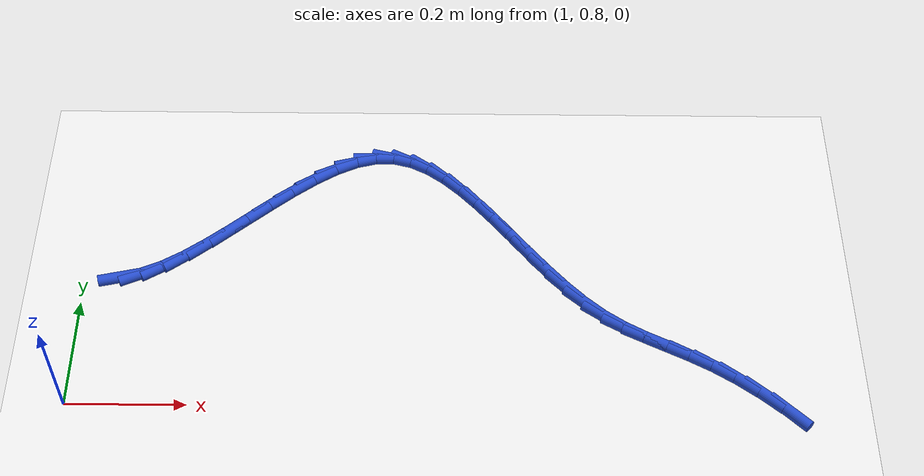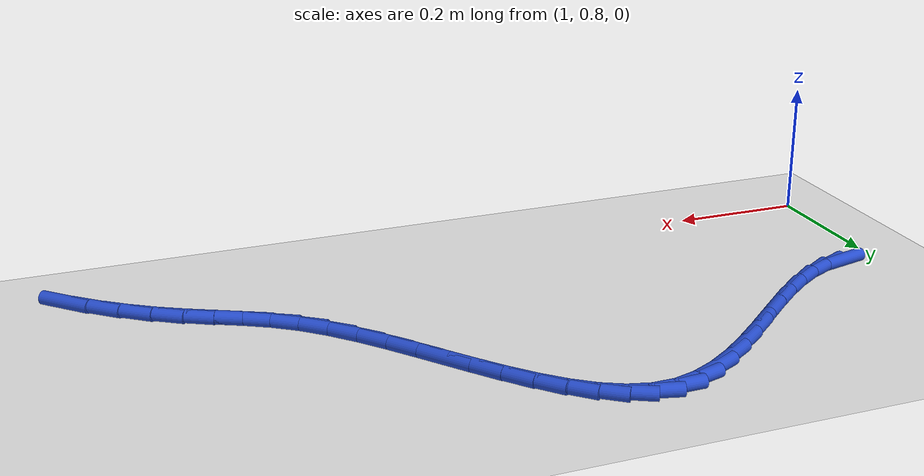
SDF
<sdf version="1.6">
 <world name="default">
  <model name="ground_plane">
   <static>1</static>
   <link name="link">
    <collision name="collision">
     <geometry><plane><normal>0 0 1</normal><size>100 100</size></plane></geometry>
     <surface><friction><ode><mu>100</mu><mu2>50</mu2></ode></friction></surface>
    </collision>
    <visual name="visual">
     <cast_shadows>0</cast_shadows>
     <geometry><plane><normal>0 0 1</normal><size>100 100</size></plane></geometry>
     <material>
      <script><uri>file://media/materials/scripts/gazebo.material</uri><name>Gazebo/WhiteGlow</name></script>
     </material>
    </visual>
   </link>
  </model>
  <model name="line">
   <link name="link_51">
    <pose>1.0645495627103858 1.0475559115130457 0.01 0 1.57 0.22516677115780626</pose>
    <collision name="collision">
     <geometry><cylinder><radius>0.01</radius><length>0.08</length></cylinder></geometry>
    </collision>
    <visual name="visual">
     <material>
      <script><name>Gazebo/Blue</name><uri>file://media/materials/scripts/gazebo.material</uri></script>
     </material>
     <geometry><cylinder><radius>0.01</radius><length>0.08</length></cylinder></geometry>
    </visual>
   </link>
   <link name="link_52">
    <pose>1.0971877701576767 1.0550317217874212 0.01 0 1.57 0.4237539195885437</pose>
    <collision name="collision">
     <geometry><cylinder><radius>0.01</radius><length>0.08</length></cylinder></geometry>
    </collision>
    <visual name="visual">
     <material>
      <script><name>Gazebo/Blue</name><uri>file://media/materials/scripts/gazebo.material</uri></script>
     </material>
     <geometry><cylinder><radius>0.01</radius><length>0.08</length></cylinder></geometry>
    </visual>
   </link>
   <link name="link_53">
    <pose>1.1310813266219522 1.0703205181027404 0.01 0 1.57 0.5532730920960734</pose>
    <collision name="collision">
     <geometry><cylinder><radius>0.01</radius><length>0.08</length></cylinder></geometry>
    </collision>
    <visual name="visual">
     <material>
      <script><name>Gazebo/Blue</name><uri>file://media/materials/scripts/gazebo.material</uri></script>
     </material>
     <geometry><cylinder><radius>0.01</radius><length>0.08</length></cylinder></geometry>
    </visual>
   </link>
   <link name="link_54">
    <pose>1.1660049868540003 1.0918899897105898 0.01 0 1.57 0.6348736017017773</pose>
    <collision name="collision">
     <geometry><cylinder><radius>0.01</radius><length>0.08</length></cylinder></geometry>
    </collision>
    <visual name="visual">
     <material>
      <script><name>Gazebo/Blue</name><uri>file://media/materials/scripts/gazebo.material</uri></script>
     </material>
     <geometry><cylinder><radius>0.01</radius><length>0.08</length></cylinder></geometry>
    </visual>
   </link>
   <link name="link_55">
    <pose>1.2017335056046081 1.1182078258625547 0.01 0 1.57 0.6828726116170073</pose>
    <collision name="collision">
     <geometry><cylinder><radius>0.01</radius><length>0.08</length></cylinder></geometry>
    </collision>
    <visual name="visual">
     <material>
      <script><name>Gazebo/Blue</name><uri>file://media/materials/scripts/gazebo.material</uri></script>
     </material>
     <geometry><cylinder><radius>0.01</radius><length>0.08</length></cylinder></geometry>
    </visual>
   </link>
   <link name="link_56">
    <pose>1.2380416376245642 1.147741715810221 0.01 0 1.57 0.7053565660442894</pose>
    <collision name="collision">
     <geometry><cylinder><radius>0.01</radius><length>0.08</length></cylinder></geometry>
    </collision>
    <visual name="visual">
     <material>
      <script><name>Gazebo/Blue</name><uri>file://media/materials/scripts/gazebo.material</uri></script>
     </material>
     <geometry><cylinder><radius>0.01</radius><length>0.08</length></cylinder></geometry>
    </visual>
   </link>
   <link name="link_57">
    <pose>1.274704137664656 1.1789593488051757 0.01 0 1.57 0.706009868089719</pose>
    <collision name="collision">
     <geometry><cylinder><radius>0.01</radius><length>0.08</length></cylinder></geometry>
    </collision>
    <visual name="visual">
     <material>
      <script><name>Gazebo/Blue</name><uri>file://media/materials/scripts/gazebo.material</uri></script>
     </material>
     <geometry><cylinder><radius>0.01</radius><length>0.08</length></cylinder></geometry>
    </visual>
   </link>
   <link name="link_58">
    <pose>1.3114957604756703 1.2103284140990034 0.01 0 1.57 0.6851513043498499</pose>
    <collision name="collision">
     <geometry><cylinder><radius>0.01</radius><length>0.08</length></cylinder></geometry>
    </collision>
    <visual name="visual">
     <material>
      <script><name>Gazebo/Blue</name><uri>file://media/materials/scripts/gazebo.material</uri></script>
     </material>
     <geometry><cylinder><radius>0.01</radius><length>0.08</length></cylinder></geometry>
    </visual>
   </link>
   <link name="link_59">
    <pose>1.3481912608083955 1.2403166009432907 0.01 0 1.57 0.6398737353921345</pose>
    <collision name="collision">
     <geometry><cylinder><radius>0.01</radius><length>0.08</length></cylinder></geometry>
    </collision>
    <visual name="visual">
     <material>
      <script><name>Gazebo/Blue</name><uri>file://media/materials/scripts/gazebo.material</uri></script>
     </material>
     <geometry><cylinder><radius>0.01</radius><length>0.08</length></cylinder></geometry>
    </visual>
   </link>
   <link name="link_60">
    <pose>1.3845653934136193 1.2673915985896234 0.01 0 1.57 0.5633479967560674</pose>
    <collision name="collision">
     <geometry><cylinder><radius>0.01</radius><length>0.08</length></cylinder></geometry>
    </collision>
    <visual name="visual">
     <material>
      <script><name>Gazebo/Blue</name><uri>file://media/materials/scripts/gazebo.material</uri></script>
     </material>
     <geometry><cylinder><radius>0.01</radius><length>0.08</length></cylinder></geometry>
    </visual>
   </link>
   <link name="link_61">
    <pose>1.4203929130421298 1.2900210962895875 0.01 0 1.57 0.443454104782981</pose>
    <collision name="collision">
     <geometry><cylinder><radius>0.01</radius><length>0.08</length></cylinder></geometry>
    </collision>
    <visual name="visual">
     <material>
      <script><name>Gazebo/Blue</name><uri>file://media/materials/scripts/gazebo.material</uri></script>
     </material>
     <geometry><cylinder><radius>0.01</radius><length>0.08</length></cylinder></geometry>
    </visual>
   </link>
   <link name="link_62">
    <pose>1.455448574444714 1.3066727832947689 0.01 0 1.57 0.2622267586462871</pose>
    <collision name="collision">
     <geometry><cylinder><radius>0.01</radius><length>0.08</length></cylinder></geometry>
    </collision>
    <visual name="visual">
     <material>
      <script><name>Gazebo/Blue</name><uri>file://media/materials/scripts/gazebo.material</uri></script>
     </material>
     <geometry><cylinder><radius>0.01</radius><length>0.08</length></cylinder></geometry>
    </visual>
   </link>
   <link name="link_63">
    <pose>1.4895071323721594 1.3158143488567529 0.01 0 1.57 0.008959498481161295</pose>
    <collision name="collision">
     <geometry><cylinder><radius>0.01</radius><length>0.08</length></cylinder></geometry>
    </collision>
    <visual name="visual">
     <material>
      <script><name>Gazebo/Blue</name><uri>file://media/materials/scripts/gazebo.material</uri></script>
     </material>
     <geometry><cylinder><radius>0.01</radius><length>0.08</length></cylinder></geometry>
    </visual>
   </link>
   <link name="link_64">
    <pose>1.5223737825477859 1.3161088254385926 0.01 0 1.57 -0.2543006514144499</pose>
    <collision name="collision">
     <geometry><cylinder><radius>0.01</radius><length>0.08</length></cylinder></geometry>
    </collision>
    <visual name="visual">
     <material>
      <script><name>Gazebo/Blue</name><uri>file://media/materials/scripts/gazebo.material</uri></script>
     </material>
     <geometry><cylinder><radius>0.01</radius><length>0.08</length></cylinder></geometry>
    </visual>
   </link>
   <link name="link_65">
    <pose>1.554109381991304 1.307859853359536 0.01 0 1.57 -0.47069046316593033</pose>
    <collision name="collision">
     <geometry><cylinder><radius>0.01</radius><length>0.08</length></cylinder></geometry>
    </collision>
    <visual name="visual">
     <material>
      <script><name>Gazebo/Blue</name><uri>file://media/materials/scripts/gazebo.material</uri></script>
     </material>
     <geometry><cylinder><radius>0.01</radius><length>0.08</length></cylinder></geometry>
    </visual>
   </link>
   <link name="link_66">
    <pose>1.5849025902804927 1.2921911966093431 0.01 0 1.57 -0.6312070473543551</pose>
    <collision name="collision">
     <geometry><cylinder><radius>0.01</radius><length>0.08</length></cylinder></geometry>
    </collision>
    <visual name="visual">
     <material>
      <script><name>Gazebo/Blue</name><uri>file://media/materials/scripts/gazebo.material</uri></script>
     </material>
     <geometry><cylinder><radius>0.01</radius><length>0.08</length></cylinder></geometry>
    </visual>
   </link>
   <link name="link_67">
    <pose>1.6149430139416245 1.270232695854855 0.01 0 1.57 -0.743745261661115</pose>
    <collision name="collision">
     <geometry><cylinder><radius>0.01</radius><length>0.08</length></cylinder></geometry>
    </collision>
    <visual name="visual">
     <material>
      <script><name>Gazebo/Blue</name><uri>file://media/materials/scripts/gazebo.material</uri></script>
     </material>
     <geometry><cylinder><radius>0.01</radius><length>0.08</length></cylinder></geometry>
    </visual>
   </link>
   <link name="link_68">
    <pose>1.6444202595009738 1.2431141917629158 0.01 0 1.57 -0.8193256100123941</pose>
    <collision name="collision">
     <geometry><cylinder><radius>0.01</radius><length>0.08</length></cylinder></geometry>
    </collision>
    <visual name="visual">
     <material>
      <script><name>Gazebo/Blue</name><uri>file://media/materials/scripts/gazebo.material</uri></script>
     </material>
     <geometry><cylinder><radius>0.01</radius><length>0.08</length></cylinder></geometry>
    </visual>
   </link>
   <link name="link_69">
    <pose>1.6735239334848124 1.211965525000367 0.01 0 1.57 -0.8666763242689905</pose>
    <collision name="collision">
     <geometry><cylinder><radius>0.01</radius><length>0.08</length></cylinder></geometry>
    </collision>
    <visual name="visual">
     <material>
      <script><name>Gazebo/Blue</name><uri>file://media/materials/scripts/gazebo.material</uri></script>
     </material>
     <geometry><cylinder><radius>0.01</radius><length>0.08</length></cylinder></geometry>
    </visual>
   </link>
   <link name="link_70">
    <pose>1.7024436424194154 1.1779165362340518 0.01 0 1.57 -0.8914798488127407</pose>
    <collision name="collision">
     <geometry><cylinder><radius>0.01</radius><length>0.08</length></cylinder></geometry>
    </collision>
    <visual name="visual">
     <material>
      <script><name>Gazebo/Blue</name><uri>file://media/materials/scripts/gazebo.material</uri></script>
     </material>
     <geometry><cylinder><radius>0.01</radius><length>0.08</length></cylinder></geometry>
    </visual>
   </link>
   <link name="link_71">
    <pose>1.7313689928310545 1.1420970661308125 0.01 0 1.57 -0.8968501118826236</pose>
    <collision name="collision">
     <geometry><cylinder><radius>0.01</radius><length>0.08</length></cylinder></geometry>
    </collision>
    <visual name="visual">
     <material>
      <script><name>Gazebo/Blue</name><uri>file://media/materials/scripts/gazebo.material</uri></script>
     </material>
     <geometry><cylinder><radius>0.01</radius><length>0.08</length></cylinder></geometry>
    </visual>
   </link>
   <link name="link_72">
    <pose>1.7604895912460041 1.1056369553574918 0.01 0 1.57 -0.8838240015843302</pose>
    <collision name="collision">
     <geometry><cylinder><radius>0.01</radius><length>0.08</length></cylinder></geometry>
    </collision>
    <visual name="visual">
     <material>
      <script><name>Gazebo/Blue</name><uri>file://media/materials/scripts/gazebo.material</uri></script>
     </material>
     <geometry><cylinder><radius>0.01</radius><length>0.08</length></cylinder></geometry>
    </visual>
   </link>
   <link name="link_73">
    <pose>1.7899950441905372 1.0696660445809327 0.01 0 1.57 -0.8516032647216885</pose>
    <collision name="collision">
     <geometry><cylinder><radius>0.01</radius><length>0.08</length></cylinder></geometry>
    </collision>
    <visual name="visual">
     <material>
      <script><name>Gazebo/Blue</name><uri>file://media/materials/scripts/gazebo.material</uri></script>
     </material>
     <geometry><cylinder><radius>0.01</radius><length>0.08</length></cylinder></geometry>
    </visual>
   </link>
   <link name="link_74">
    <pose>1.8200749581909266 1.0353141744679768 0.01 0 1.57 -0.7975519928433182</pose>
    <collision name="collision">
     <geometry><cylinder><radius>0.01</radius><length>0.08</length></cylinder></geometry>
    </collision>
    <visual name="visual">
     <material>
      <script><name>Gazebo/Blue</name><uri>file://media/materials/scripts/gazebo.material</uri></script>
     </material>
     <geometry><cylinder><radius>0.01</radius><length>0.08</length></cylinder></geometry>
    </visual>
   </link>
   <link name="link_75">
    <pose>1.850918939773446 1.0037111856854677 0.01 0 1.57 -0.7170695965001556</pose>
    <collision name="collision">
     <geometry><cylinder><radius>0.01</radius><length>0.08</length></cylinder></geometry>
    </collision>
    <visual name="visual">
     <material>
      <script><name>Gazebo/Blue</name><uri>file://media/materials/scripts/gazebo.material</uri></script>
     </material>
     <geometry><cylinder><radius>0.01</radius><length>0.08</length></cylinder></geometry>
    </visual>
   </link>
   <link name="link_76">
    <pose>1.8827165954643696 0.9759869189002478 0.01 0 1.57 -0.6087301896084494</pose>
    <collision name="collision">
     <geometry><cylinder><radius>0.01</radius><length>0.08</length></cylinder></geometry>
    </collision>
    <visual name="visual">
     <material>
      <script><name>Gazebo/Blue</name><uri>file://media/materials/scripts/gazebo.material</uri></script>
     </material>
     <geometry><cylinder><radius>0.01</radius><length>0.08</length></cylinder></geometry>
    </visual>
   </link>
   <link name="link_77">
    <pose>1.9156401284164857 0.9530382142325524 0.01 0 1.57 -0.5140570098459021</pose>
    <collision name="collision">
     <geometry><cylinder><radius>0.01</radius><length>0.08</length></cylinder></geometry>
    </collision>
    <visual name="visual">
     <material>
      <script><name>Gazebo/Blue</name><uri>file://media/materials/scripts/gazebo.material</uri></script>
     </material>
     <geometry><cylinder><radius>0.01</radius><length>0.08</length></cylinder></geometry>
    </visual>
   </link>
   <link name="link_78">
    <pose>1.949714923377538 0.9337962717121426 0.01 0 1.57 -0.46367861394394416</pose>
    <collision name="collision">
     <geometry><cylinder><radius>0.01</radius><length>0.08</length></cylinder></geometry>
    </collision>
    <visual name="visual">
     <material>
      <script><name>Gazebo/Blue</name><uri>file://media/materials/scripts/gazebo.material</uri></script>
     </material>
     <geometry><cylinder><radius>0.01</radius><length>0.08</length></cylinder></geometry>
    </visual>
   </link>
   <link name="link_79">
    <pose>1.9848926981749786 0.916206020936152 0.01 0 1.57 -0.4611069807576531</pose>
    <collision name="collision">
     <geometry><cylinder><radius>0.01</radius><length>0.08</length></cylinder></geometry>
    </collision>
    <visual name="visual">
     <material>
      <script><name>Gazebo/Blue</name><uri>file://media/materials/scripts/gazebo.material</uri></script>
     </material>
     <geometry><cylinder><radius>0.01</radius><length>0.08</length></cylinder></geometry>
    </visual>
   </link>
   <link name="link_80">
    <pose>2.021124617093376 0.8982049805365434 0.01 0 1.57 -0.5027161206493165</pose>
    <collision name="collision">
     <geometry><cylinder><radius>0.01</radius><length>0.08</length></cylinder></geometry>
    </collision>
    <visual name="visual">
     <material>
      <script><name>Gazebo/Blue</name><uri>file://media/materials/scripts/gazebo.material</uri></script>
     </material>
     <geometry><cylinder><radius>0.01</radius><length>0.08</length></cylinder></geometry>
    </visual>
   </link>
   <link name="link_81">
    <pose>2.058361844417296 0.877730669145279 0.01 0 1.57 -0.5746208051728079</pose>
    <collision name="collision">
     <geometry><cylinder><radius>0.01</radius><length>0.08</length></cylinder></geometry>
    </collision>
    <visual name="visual">
     <material>
      <script><name>Gazebo/Blue</name><uri>file://media/materials/scripts/gazebo.material</uri></script>
     </material>
     <geometry><cylinder><radius>0.01</radius><length>0.08</length></cylinder></geometry>
    </visual>
   </link>
   <link name="link_82">
    <pose>2.0964655608591576 0.8530582390028494 0.01 0 1.57 -0.6445030631017857</pose>
    <collision name="collision">
     <geometry><cylinder><radius>0.01</radius><length>0.08</length></cylinder></geometry>
    </collision>
    <visual name="visual">
     <material>
      <script><name>Gazebo/Blue</name><uri>file://media/materials/scripts/gazebo.material</uri></script>
     </material>
     <geometry><cylinder><radius>0.01</radius><length>0.08</length></cylinder></geometry>
    </visual>
   </link>
   <link name="link_83">
    <pose>2.134826702071948 0.8242272814858503 0.01 0 1.57 -0.7075148353340386</pose>
    <collision name="collision">
     <geometry><cylinder><radius>0.01</radius><length>0.08</length></cylinder></geometry>
    </collision>
    <visual name="visual">
     <material>
      <script><name>Gazebo/Blue</name><uri>file://media/materials/scripts/gazebo.material</uri></script>
     </material>
     <geometry><cylinder><radius>0.01</radius><length>0.08</length></cylinder></geometry>
    </visual>
   </link>
   <link name="link_84">
    <pose>2.1726831002842553 0.7918518579593881 0.01 0 1.57 -0.767542225457668</pose>
    <collision name="collision">
     <geometry><cylinder><radius>0.01</radius><length>0.08</length></cylinder></geometry>
    </collision>
    <visual name="visual">
     <material>
      <script><name>Gazebo/Blue</name><uri>file://media/materials/scripts/gazebo.material</uri></script>
     </material>
     <geometry><cylinder><radius>0.01</radius><length>0.08</length></cylinder></geometry>
    </visual>
   </link>
  </model>
 </world>
</sdf>
